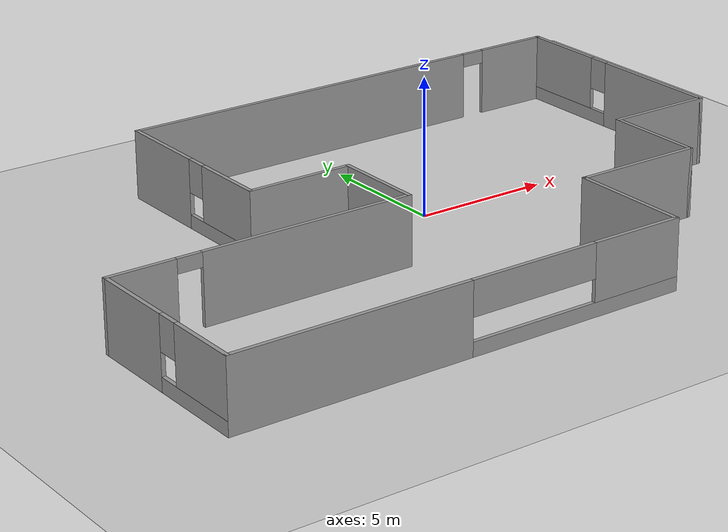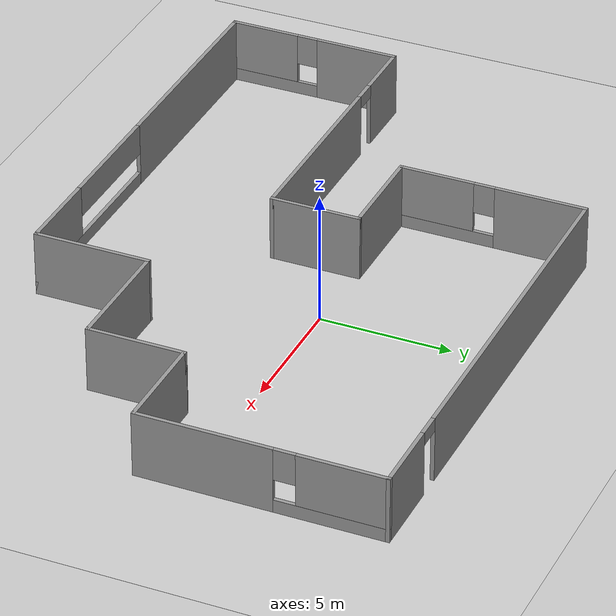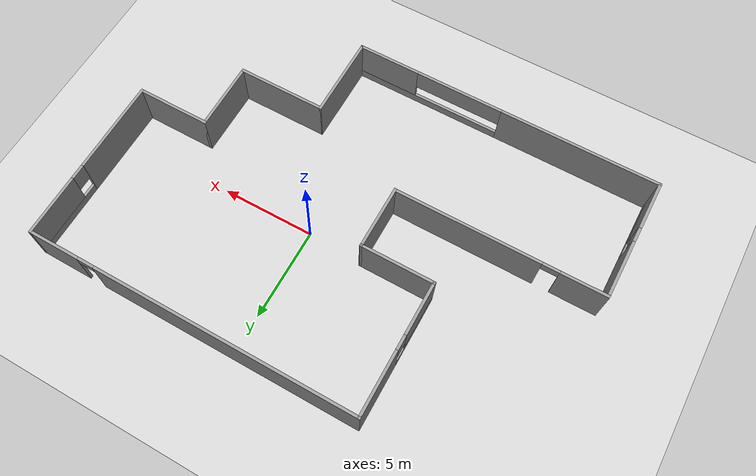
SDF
<sdf version="1.7">
 <world name="default">
  <light name="sun" type="directional">
   <pose>0 0 10 0 -0 0</pose>
   <diffuse>0.8 0.8 0.8 1</diffuse>
   <specular>0.2 0.2 0.2 1</specular>
   <attenuation>
    <range>1000</range>
    <constant>0.9</constant>
    <linear>0.01</linear>
    <quadratic>0.001</quadratic>
   </attenuation>
   <direction>-0.5 0.1 -0.9</direction>
   <spot><inner_angle>0</inner_angle><outer_angle>0</outer_angle><falloff>0</falloff></spot>
  </light>
  <model name="ground_plane">
   <static>1</static>
   <link name="link">
    <collision name="collision">
     <geometry><plane><normal>0 0 1</normal><size>100 100</size></plane></geometry>
     <surface><friction><ode><mu>100</mu><mu2>50</mu2></ode></friction></surface>
    </collision>
    <visual name="visual">
     <cast_shadows>0</cast_shadows>
     <geometry><plane><normal>0 0 1</normal><size>100 100</size></plane></geometry>
     <material>
      <script><uri>file://media/materials/scripts/gazebo.material</uri><name>Gazebo/Grey</name></script>
     </material>
    </visual>
   </link>
  </model>
  <gravity>0 0 -9.8</gravity>
  <magnetic_field>6e-06 2.3e-05 -4.2e-05</magnetic_field>
  <atmosphere type="adiabatic"/>
  <physics type="ode">
   <max_step_size>0.001</max_step_size>
   <real_time_factor>1</real_time_factor>
   <real_time_update_rate>1000</real_time_update_rate>
  </physics>
  <scene><ambient>0.4 0.4 0.4 1</ambient><background>0.7 0.7 0.7 1</background><shadows>1</shadows></scene>
  <audio><device>default</device></audio>
  <spherical_coordinates>
   <surface_model>EARTH_WGS84</surface_model>
   <latitude_deg>0</latitude_deg>
   <longitude_deg>0</longitude_deg>
   <elevation>0</elevation>
   <heading_deg>0</heading_deg>
  </spherical_coordinates>
  <model name="test">
   <pose>-1.56883 -1.24367 0 0 -0 0</pose>
   <link name="Wall_0">
    <collision name="Wall_0_Collision">
     <geometry><box><size>4.75 0.15 2.5</size></box></geometry>
     <pose>0 0 1.25 0 -0 0</pose>
    </collision>
    <visual name="Wall_0_Visual">
     <pose>0 0 1.25 0 -0 0</pose>
     <geometry><box><size>4.75 0.15 2.5</size></box></geometry>
     <material>
      <script><uri>file://media/materials/scripts/gazebo.material</uri><name>Gazebo/Grey</name></script>
      <ambient>1 1 1 1</ambient>
     </material>
     <meta><layer>0</layer></meta>
    </visual>
    <pose>6.4 -4.175 0 0 -0 0</pose>
   </link>
   <link name="Wall_1">
    <collision name="Wall_1_Collision">
     <geometry><box><size>3.75 0.15 2.5</size></box></geometry>
     <pose>0 0 1.25 0 -0 0</pose>
    </collision>
    <visual name="Wall_1_Visual">
     <pose>0 0 1.25 0 -0 0</pose>
     <geometry><box><size>3.75 0.15 2.5</size></box></geometry>
     <material>
      <script><uri>file://media/materials/scripts/gazebo.material</uri><name>Gazebo/Grey</name></script>
      <ambient>1 1 1 1</ambient>
     </material>
     <meta><layer>0</layer></meta>
    </visual>
    <pose>8.7 -2.375 0 0 -0 1.5708</pose>
   </link>
   <link name="Wall_10">
    <collision name="Wall_10_Collision">
     <geometry><box><size>3.5 0.15 2.5</size></box></geometry>
     <pose>0 0 1.25 0 -0 0</pose>
    </collision>
    <visual name="Wall_10_Visual">
     <pose>0 0 1.25 0 -0 0</pose>
     <geometry><box><size>3.5 0.15 2.5</size></box></geometry>
     <material>
      <script><uri>file://media/materials/scripts/gazebo.material</uri><name>Gazebo/Grey</name></script>
      <ambient>1 1 1 1</ambient>
     </material>
     <meta><layer>0</layer></meta>
    </visual>
    <pose>-1.45 -0.25 0 0 -0 -1.5708</pose>
   </link>
   <link name="Wall_11">
    <pose>-7 -1.925 0 0 -0 3.14159</pose>
    <visual name="Wall_11_Visual_0">
     <pose>-1.69066 0 1.25 0 -0 0</pose>
     <geometry><box><size>7.86868 0.15 2.5</size></box></geometry>
     <material>
      <script><uri>file://media/materials/scripts/gazebo.material</uri><name>Gazebo/Grey</name></script>
      <ambient>1 1 1 1</ambient>
     </material>
     <meta><layer>0</layer></meta>
    </visual>
    <collision name="Wall_11_Collision_0">
     <geometry><box><size>7.86868 0.15 2.5</size></box></geometry>
     <pose>-1.69066 0 1.25 0 -0 0</pose>
    </collision>
    <visual name="Wall_11_Visual_1">
     <pose>4.38434 0 1.25 0 -0 0</pose>
     <geometry><box><size>2.48132 0.15 2.5</size></box></geometry>
     <material>
      <script><uri>file://media/materials/scripts/gazebo.material</uri><name>Gazebo/Grey</name></script>
      <ambient>1 1 1 1</ambient>
     </material>
     <meta><layer>0</layer></meta>
    </visual>
    <collision name="Wall_11_Collision_1">
     <geometry><box><size>2.48132 0.15 2.5</size></box></geometry>
     <pose>4.38434 0 1.25 0 -0 0</pose>
    </collision>
    <visual name="Wall_11_Visual_2">
     <pose>2.69368 0 2.25 0 -0 0</pose>
     <geometry><box><size>0.9 0.15 0.5</size></box></geometry>
     <material>
      <script><uri>file://media/materials/scripts/gazebo.material</uri><name>Gazebo/Grey</name></script>
      <ambient>1 1 1 1</ambient>
     </material>
     <meta><layer>0</layer></meta>
    </visual>
    <collision name="Wall_11_Collision_2">
     <geometry><box><size>0.9 0.15 0.5</size></box></geometry>
     <pose>2.69368 0 2.25 0 -0 0</pose>
    </collision>
   </link>
   <link name="Wall_12">
    <pose>-12.55 -5.225 0 0 -0 -1.5708</pose>
    <visual name="Wall_12_Visual_0">
     <pose>-1.76183 0 1.25 0 -0 0</pose>
     <geometry><box><size>3.22635 0.15 2.5</size></box></geometry>
     <material>
      <script><uri>file://media/materials/scripts/gazebo.material</uri><name>Gazebo/Grey</name></script>
      <ambient>1 1 1 1</ambient>
     </material>
     <meta><layer>0</layer></meta>
    </visual>
    <collision name="Wall_12_Collision_0">
     <geometry><box><size>3.22635 0.15 2.5</size></box></geometry>
     <pose>-1.76183 0 1.25 0 -0 0</pose>
    </collision>
    <visual name="Wall_12_Visual_1">
     <pose>1.61317 0 0.25 0 -0 0</pose>
     <geometry><box><size>3.52365 0.15 0.5</size></box></geometry>
     <material>
      <script><uri>file://media/materials/scripts/gazebo.material</uri><name>Gazebo/Grey</name></script>
      <ambient>1 1 1 1</ambient>
     </material>
     <meta><layer>0</layer></meta>
    </visual>
    <collision name="Wall_12_Collision_1">
     <geometry><box><size>3.52365 0.15 0.5</size></box></geometry>
     <pose>1.61317 0 0.25 0 -0 0</pose>
    </collision>
    <visual name="Wall_12_Visual_2">
     <pose>2.01317 0 1.5 0 -0 0</pose>
     <geometry><box><size>2.72365 0.15 2</size></box></geometry>
     <material>
      <script><uri>file://media/materials/scripts/gazebo.material</uri><name>Gazebo/Grey</name></script>
      <ambient>1 1 1 1</ambient>
     </material>
     <meta><layer>0</layer></meta>
    </visual>
    <collision name="Wall_12_Collision_2">
     <geometry><box><size>2.72365 0.15 2</size></box></geometry>
     <pose>2.01317 0 1.5 0 -0 0</pose>
    </collision>
    <visual name="Wall_12_Visual_3">
     <pose>0.251346 0 1.9 0 -0 0</pose>
     <geometry><box><size>0.8 0.15 1.2</size></box></geometry>
     <material>
      <script><uri>file://media/materials/scripts/gazebo.material</uri><name>Gazebo/Grey</name></script>
      <ambient>1 1 1 1</ambient>
     </material>
     <meta><layer>0</layer></meta>
    </visual>
    <collision name="Wall_12_Collision_3">
     <geometry><box><size>0.8 0.15 1.2</size></box></geometry>
     <pose>0.251346 0 1.9 0 -0 0</pose>
    </collision>
   </link>
   <link name="Wall_13">
    <pose>-4.25 -8.525 0 0 -0 0</pose>
    <visual name="Wall_13_Visual_0">
     <pose>-4.08388 0 1.25 0 -0 0</pose>
     <geometry><box><size>8.58223 0.15 2.5</size></box></geometry>
     <material>
      <script><uri>file://media/materials/scripts/gazebo.material</uri><name>Gazebo/Grey</name></script>
      <ambient>1 1 1 1</ambient>
     </material>
     <meta><layer>0</layer></meta>
    </visual>
    <collision name="Wall_13_Collision_0">
     <geometry><box><size>8.58223 0.15 2.5</size></box></geometry>
     <pose>-4.08388 0 1.25 0 -0 0</pose>
    </collision>
    <visual name="Wall_13_Visual_1">
     <pose>4.29112 0 0.25 0 -0 0</pose>
     <geometry><box><size>8.16777 0.15 0.5</size></box></geometry>
     <material>
      <script><uri>file://media/materials/scripts/gazebo.material</uri><name>Gazebo/Grey</name></script>
      <ambient>1 1 1 1</ambient>
     </material>
     <meta><layer>0</layer></meta>
    </visual>
    <collision name="Wall_13_Collision_1">
     <geometry><box><size>8.16777 0.15 0.5</size></box></geometry>
     <pose>4.29112 0 0.25 0 -0 0</pose>
    </collision>
    <visual name="Wall_13_Visual_2">
     <pose>6.66878 0 1.5 0 -0 0</pose>
     <geometry><box><size>3.41243 0.15 2</size></box></geometry>
     <material>
      <script><uri>file://media/materials/scripts/gazebo.material</uri><name>Gazebo/Grey</name></script>
      <ambient>1 1 1 1</ambient>
     </material>
     <meta><layer>0</layer></meta>
    </visual>
    <collision name="Wall_13_Collision_2">
     <geometry><box><size>3.41243 0.15 2</size></box></geometry>
     <pose>6.66878 0 1.5 0 -0 0</pose>
    </collision>
    <visual name="Wall_13_Visual_3">
     <pose>2.5849 0 1.9 0 -0 0</pose>
     <geometry><box><size>4.75533 0.15 1.2</size></box></geometry>
     <material>
      <script><uri>file://media/materials/scripts/gazebo.material</uri><name>Gazebo/Grey</name></script>
      <ambient>1 1 1 1</ambient>
     </material>
     <meta><layer>0</layer></meta>
    </visual>
    <collision name="Wall_13_Collision_3">
     <geometry><box><size>4.75533 0.15 1.2</size></box></geometry>
     <pose>2.5849 0 1.9 0 -0 0</pose>
    </collision>
   </link>
   <link name="Wall_14">
    <collision name="Wall_14_Collision">
     <geometry><box><size>4.5 0.15 2.5</size></box></geometry>
     <pose>0 0 1.25 0 -0 0</pose>
    </collision>
    <visual name="Wall_14_Visual">
     <pose>0 0 1.25 0 -0 0</pose>
     <geometry><box><size>4.5 0.15 2.5</size></box></geometry>
     <material>
      <script><uri>file://media/materials/scripts/gazebo.material</uri><name>Gazebo/Grey</name></script>
      <ambient>1 1 1 1</ambient>
     </material>
     <meta><layer>0</layer></meta>
    </visual>
    <pose>4.05 -6.35 0 0 -0 1.5708</pose>
   </link>
   <link name="Wall_2">
    <collision name="Wall_2_Collision">
     <geometry><box><size>4 0.15 2.5</size></box></geometry>
     <pose>0 0 1.25 0 -0 0</pose>
    </collision>
    <visual name="Wall_2_Visual">
     <pose>0 0 1.25 0 -0 0</pose>
     <geometry><box><size>4 0.15 2.5</size></box></geometry>
     <material>
      <script><uri>file://media/materials/scripts/gazebo.material</uri><name>Gazebo/Grey</name></script>
      <ambient>1 1 1 1</ambient>
     </material>
     <meta><layer>0</layer></meta>
    </visual>
    <pose>10.625 -0.575 0 0 -0 0</pose>
   </link>
   <link name="Wall_4">
    <pose>12.55 3.975 0 0 -0 1.5708</pose>
    <visual name="Wall_4_Visual_0">
     <pose>-2.06983 0 1.25 0 -0 0</pose>
     <geometry><box><size>5.11034 0.15 2.5</size></box></geometry>
     <material>
      <script><uri>file://media/materials/scripts/gazebo.material</uri><name>Gazebo/Grey</name></script>
      <ambient>1 1 1 1</ambient>
     </material>
     <meta><layer>0</layer></meta>
    </visual>
    <collision name="Wall_4_Collision_0">
     <geometry><box><size>5.11034 0.15 2.5</size></box></geometry>
     <pose>-2.06983 0 1.25 0 -0 0</pose>
    </collision>
    <visual name="Wall_4_Visual_1">
     <pose>2.55517 0 0.25 0 -0 0</pose>
     <geometry><box><size>4.13966 0.15 0.5</size></box></geometry>
     <material>
      <script><uri>file://media/materials/scripts/gazebo.material</uri><name>Gazebo/Grey</name></script>
      <ambient>1 1 1 1</ambient>
     </material>
     <meta><layer>0</layer></meta>
    </visual>
    <collision name="Wall_4_Collision_1">
     <geometry><box><size>4.13966 0.15 0.5</size></box></geometry>
     <pose>2.55517 0 0.25 0 -0 0</pose>
    </collision>
    <visual name="Wall_4_Visual_2">
     <pose>2.95517 0 1.5 0 -0 0</pose>
     <geometry><box><size>3.33966 0.15 2</size></box></geometry>
     <material>
      <script><uri>file://media/materials/scripts/gazebo.material</uri><name>Gazebo/Grey</name></script>
      <ambient>1 1 1 1</ambient>
     </material>
     <meta><layer>0</layer></meta>
    </visual>
    <collision name="Wall_4_Collision_2">
     <geometry><box><size>3.33966 0.15 2</size></box></geometry>
     <pose>2.95517 0 1.5 0 -0 0</pose>
    </collision>
    <visual name="Wall_4_Visual_3">
     <pose>0.885338 0 1.9 0 -0 0</pose>
     <geometry><box><size>0.8 0.15 1.2</size></box></geometry>
     <material>
      <script><uri>file://media/materials/scripts/gazebo.material</uri><name>Gazebo/Grey</name></script>
      <ambient>1 1 1 1</ambient>
     </material>
     <meta><layer>0</layer></meta>
    </visual>
    <collision name="Wall_4_Collision_3">
     <geometry><box><size>0.8 0.15 1.2</size></box></geometry>
     <pose>0.885338 0 1.9 0 -0 0</pose>
    </collision>
   </link>
   <link name="Wall_7">
    <pose>3.625 8.525 0 0 -0 3.14159</pose>
    <visual name="Wall_7_Visual_0">
     <pose>-7.57172 0 1.25 0 -0 0</pose>
     <geometry><box><size>2.85657 0.15 2.5</size></box></geometry>
     <material>
      <script><uri>file://media/materials/scripts/gazebo.material</uri><name>Gazebo/Grey</name></script>
      <ambient>1 1 1 1</ambient>
     </material>
     <meta><layer>0</layer></meta>
    </visual>
    <collision name="Wall_7_Collision_0">
     <geometry><box><size>2.85657 0.15 2.5</size></box></geometry>
     <pose>-7.57172 0 1.25 0 -0 0</pose>
    </collision>
    <visual name="Wall_7_Visual_1">
     <pose>1.87828 0 1.25 0 -0 0</pose>
     <geometry><box><size>14.2434 0.15 2.5</size></box></geometry>
     <material>
      <script><uri>file://media/materials/scripts/gazebo.material</uri><name>Gazebo/Grey</name></script>
      <ambient>1 1 1 1</ambient>
     </material>
     <meta><layer>0</layer></meta>
    </visual>
    <collision name="Wall_7_Collision_1">
     <geometry><box><size>14.2434 0.15 2.5</size></box></geometry>
     <pose>1.87828 0 1.25 0 -0 0</pose>
    </collision>
    <visual name="Wall_7_Visual_2">
     <pose>-5.69343 0 2.25 0 -0 0</pose>
     <geometry><box><size>0.9 0.15 0.5</size></box></geometry>
     <material>
      <script><uri>file://media/materials/scripts/gazebo.material</uri><name>Gazebo/Grey</name></script>
      <ambient>1 1 1 1</ambient>
     </material>
     <meta><layer>0</layer></meta>
    </visual>
    <collision name="Wall_7_Collision_2">
     <geometry><box><size>0.9 0.15 0.5</size></box></geometry>
     <pose>-5.69343 0 2.25 0 -0 0</pose>
    </collision>
   </link>
   <link name="Wall_8">
    <pose>-5.3 4.975 0 0 -0 -1.5708</pose>
    <visual name="Wall_8_Visual_0">
     <pose>-1.86288 0 1.25 0 -0 0</pose>
     <geometry><box><size>3.52425 0.15 2.5</size></box></geometry>
     <material>
      <script><uri>file://media/materials/scripts/gazebo.material</uri><name>Gazebo/Grey</name></script>
      <ambient>1 1 1 1</ambient>
     </material>
     <meta><layer>0</layer></meta>
    </visual>
    <collision name="Wall_8_Collision_0">
     <geometry><box><size>3.52425 0.15 2.5</size></box></geometry>
     <pose>-1.86288 0 1.25 0 -0 0</pose>
    </collision>
    <visual name="Wall_8_Visual_1">
     <pose>1.76212 0 0.25 0 -0 0</pose>
     <geometry><box><size>3.72575 0.15 0.5</size></box></geometry>
     <material>
      <script><uri>file://media/materials/scripts/gazebo.material</uri><name>Gazebo/Grey</name></script>
      <ambient>1 1 1 1</ambient>
     </material>
     <meta><layer>0</layer></meta>
    </visual>
    <collision name="Wall_8_Collision_1">
     <geometry><box><size>3.72575 0.15 0.5</size></box></geometry>
     <pose>1.76212 0 0.25 0 -0 0</pose>
    </collision>
    <visual name="Wall_8_Visual_2">
     <pose>2.16212 0 1.5 0 -0 0</pose>
     <geometry><box><size>2.92575 0.15 2</size></box></geometry>
     <material>
      <script><uri>file://media/materials/scripts/gazebo.material</uri><name>Gazebo/Grey</name></script>
      <ambient>1 1 1 1</ambient>
     </material>
     <meta><layer>0</layer></meta>
    </visual>
    <collision name="Wall_8_Collision_2">
     <geometry><box><size>2.92575 0.15 2</size></box></geometry>
     <pose>2.16212 0 1.5 0 -0 0</pose>
    </collision>
    <visual name="Wall_8_Visual_3">
     <pose>0.299246 0 1.9 0 -0 0</pose>
     <geometry><box><size>0.8 0.15 1.2</size></box></geometry>
     <material>
      <script><uri>file://media/materials/scripts/gazebo.material</uri><name>Gazebo/Grey</name></script>
      <ambient>1 1 1 1</ambient>
     </material>
     <meta><layer>0</layer></meta>
    </visual>
    <collision name="Wall_8_Collision_3">
     <geometry><box><size>0.8 0.15 1.2</size></box></geometry>
     <pose>0.299246 0 1.9 0 -0 0</pose>
    </collision>
   </link>
   <link name="Wall_9">
    <collision name="Wall_9_Collision">
     <geometry><box><size>4 0.15 2.5</size></box></geometry>
     <pose>0 0 1.25 0 -0 0</pose>
    </collision>
    <visual name="Wall_9_Visual">
     <pose>0 0 1.25 0 -0 0</pose>
     <geometry><box><size>4 0.15 2.5</size></box></geometry>
     <material>
      <script><uri>file://media/materials/scripts/gazebo.material</uri><name>Gazebo/Grey</name></script>
      <ambient>1 1 1 1</ambient>
     </material>
     <meta><layer>0</layer></meta>
    </visual>
    <pose>-3.375 1.425 0 0 -0 0</pose>
   </link>
   <static>1</static>
  </model>
 </world>
</sdf>
